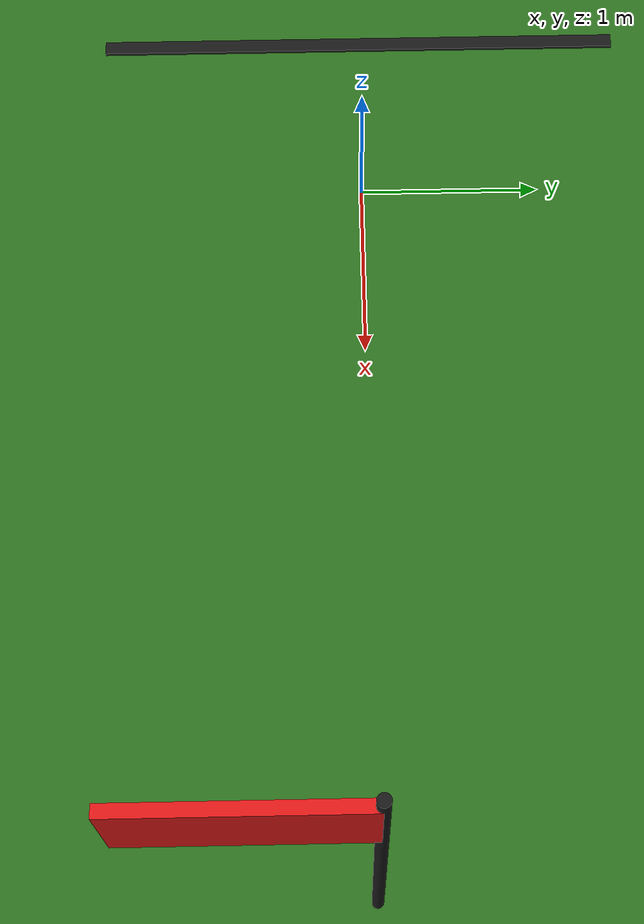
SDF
<?xml version="1.0"?>

<sdf version="1.10">
    <world name="drone_obstacle_course_swarm">

        <!-- PHYSICS -->

        <physics name="physics" type="ode">
            <max_step_size>0.001</max_step_size>
            <real_time_factor>1.0</real_time_factor>
        </physics>

        <!-- ENVIRONMENT -->

        <scene>
            <ambient>0.25 0.25 0.25 1</ambient>
            <background>0.72 0.80 0.72 1</background>
            <shadows>false</shadows>
        </scene>

        <!-- GROUND -->

        <model name="ground">
            <static>true</static>

            <link name="ground_link">

                <collision name="ground_collision">
                    <geometry>
                        <plane>
                            <normal>0 0 1</normal>
                            <size>100 100</size>
                        </plane>
                    </geometry>
                </collision>

                <visual name="ground_visual">
                    <geometry>
                        <plane>
                            <normal>0 0 1</normal>
                            <size>100 100</size>
                        </plane>
                    </geometry>

                    <material>
                        <ambient>0.10 0.30 0.08 1</ambient>
                        <diffuse>0.18 0.45 0.12 1</diffuse>
                        <specular>0.01 0.01 0.01 1</specular>
                    </material>
                </visual>

            </link>
        </model>

        <!-- MINIMAL LIGHT -->

        <light name="main_light" type="directional">
            <pose>0 0 20 0.3 0.2 0</pose>
            <diffuse>0.45 0.45 0.45 1</diffuse>
            <specular>0.02 0.02 0.02 1</specular>
            <direction>-0.3 0.2 -1</direction>
            <cast_shadows>false</cast_shadows>
        </light>

        <!-- TEST START -->

        <model name="test_start">
            <static>true</static>

            <link name="link">

                <visual name="marker">

                    <pose>-1 0 0.01 0 0 0</pose>

                    <geometry>
                        <box>
                            <size>0.08 3 0.02</size>
                        </box>
                    </geometry>

                    <material>
                        <ambient>0.05 0.05 0.05 1</ambient>
                        <diffuse>0.10 0.10 0.10 1</diffuse>
                    </material>

                </visual>

            </link>
        </model>

        <!-- TEST 3 FLAG -->

        <model name="swarm_flag">
            <static>true</static>
            <pose>4 0 0 0 0 0</pose>

            <link name="flag_link">

                <visual name="pole">
                    <pose>0 0 1.25 0 0 0</pose>

                    <geometry>
                        <cylinder>
                            <radius>0.03</radius>
                            <length>2.5</length>
                        </cylinder>
                    </geometry>

                    <material>
                        <ambient>0.05 0.05 0.05 1</ambient>
                        <diffuse>0.10 0.10 0.10 1</diffuse>
                    </material>
                </visual>

                <visual name="flag">
                    <pose>0 -0.55 2.10 0 0 0</pose>

                    <geometry>
                        <box>
                            <size>0.06 1.10 0.60</size>
                        </box>
                    </geometry>

                    <material>
                        <ambient>0.60 0.05 0.05 1</ambient>
                        <diffuse>0.90 0.10 0.10 1</diffuse>
                    </material>
                </visual>

            </link>
        </model>

    </world>
</sdf>
